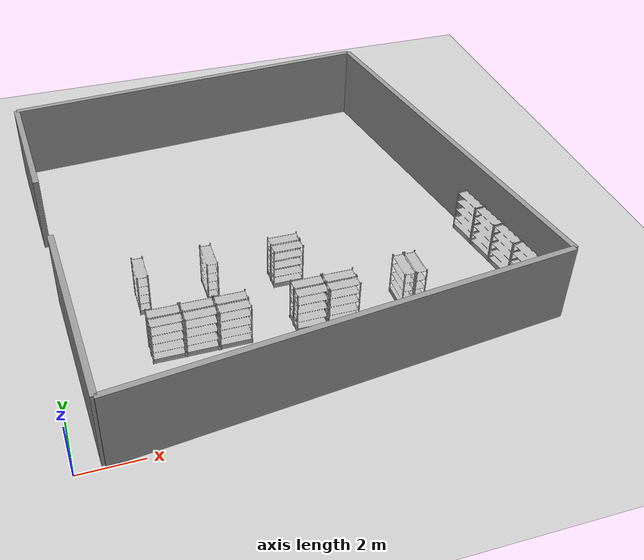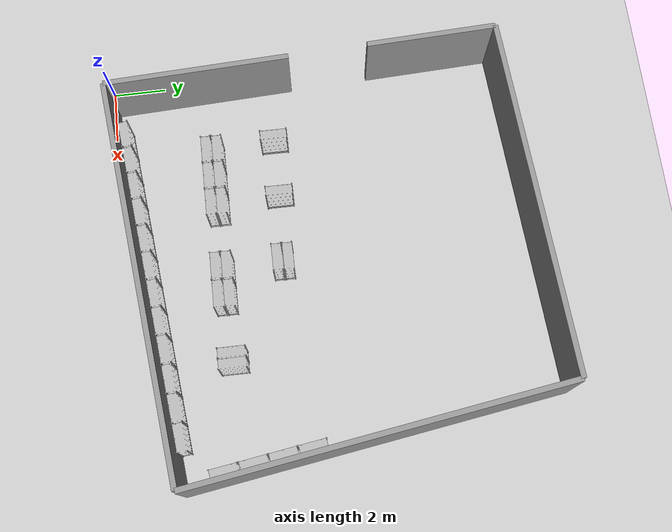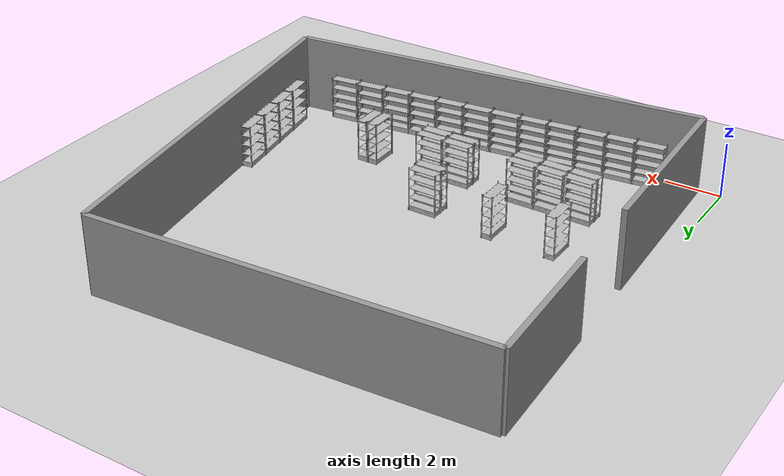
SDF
<sdf version="1.6">
 <world name="default">
  <model name="ground_plane">
   <static>1</static>
   <link name="link">
    <collision name="collision">
     <geometry><plane><normal>0 0 1</normal><size>100 100</size></plane></geometry>
     <surface>
      <contact><collide_bitmask>65535</collide_bitmask></contact>
      <friction><ode><mu>1000</mu><mu2>1000</mu2></ode></friction>
     </surface>
    </collision>
    <visual name="visual">
     <cast_shadows>0</cast_shadows>
     <geometry><plane><normal>0 0 1</normal><size>100 100</size></plane></geometry>
     <material>
      <script><uri>file://media/materials/scripts/gazebo.material</uri><name>Gazebo/Grey</name></script>
     </material>
    </visual>
   </link>
  </model>
  <model name="store_shelf_moduled_0">
   <link name="link">
    <collision name="collision">
     <geometry><mesh><uri>model://store_shelf_moduled/meshes/store_shelf_moduled.dae</uri></mesh></geometry>
    </collision>
    <visual name="visual">
     <geometry><mesh><uri>model://store_shelf_moduled/meshes/store_shelf_moduled.dae</uri></mesh></geometry>
    </visual>
    <inertial>
     <mass>1000</mass>
     <inertia>
      <ixx>840083</ixx>
      <ixy>0</ixy>
      <ixz>0</ixz>
      <iyy>475500</iyy>
      <iyz>0</iyz>
      <izz>1.30208e+06</izz>
     </inertia>
    </inertial>
   </link>
   <static>1</static>
   <pose>1.908724 0.3093622 0 0 0 0.1130012</pose>
  </model>
  <model name="store_shelf_moduled_1">
   <link name="link">
    <collision name="collision">
     <geometry><mesh><uri>model://store_shelf_moduled/meshes/store_shelf_moduled.dae</uri></mesh></geometry>
    </collision>
    <visual name="visual">
     <geometry><mesh><uri>model://store_shelf_moduled/meshes/store_shelf_moduled.dae</uri></mesh></geometry>
    </visual>
    <inertial>
     <mass>1000</mass>
     <inertia>
      <ixx>840083</ixx>
      <ixy>0</ixy>
      <ixz>0</ixz>
      <iyy>475500</iyy>
      <iyz>0</iyz>
      <izz>1.30208e+06</izz>
     </inertia>
    </inertial>
   </link>
   <static>1</static>
   <pose>2.958724 0.4293622 0 0 0 0.1130012</pose>
  </model>
  <model name="store_shelf_moduled_2">
   <link name="link">
    <collision name="collision">
     <geometry><mesh><uri>model://store_shelf_moduled/meshes/store_shelf_moduled.dae</uri></mesh></geometry>
    </collision>
    <visual name="visual">
     <geometry><mesh><uri>model://store_shelf_moduled/meshes/store_shelf_moduled.dae</uri></mesh></geometry>
    </visual>
    <inertial>
     <mass>1000</mass>
     <inertia>
      <ixx>840083</ixx>
      <ixy>0</ixy>
      <ixz>0</ixz>
      <iyy>475500</iyy>
      <iyz>0</iyz>
      <izz>1.30208e+06</izz>
     </inertia>
    </inertial>
   </link>
   <static>1</static>
   <pose>4.008724 0.5493622 0 0 0 0.1130012</pose>
  </model>
  <model name="store_shelf_moduled_3">
   <link name="link">
    <collision name="collision">
     <geometry><mesh><uri>model://store_shelf_moduled/meshes/store_shelf_moduled.dae</uri></mesh></geometry>
    </collision>
    <visual name="visual">
     <geometry><mesh><uri>model://store_shelf_moduled/meshes/store_shelf_moduled.dae</uri></mesh></geometry>
    </visual>
    <inertial>
     <mass>1000</mass>
     <inertia>
      <ixx>840083</ixx>
      <ixy>0</ixy>
      <ixz>0</ixz>
      <iyy>475500</iyy>
      <iyz>0</iyz>
      <izz>1.30208e+06</izz>
     </inertia>
    </inertial>
   </link>
   <static>1</static>
   <pose>5.068724 0.6693622 0 0 0 0.1130012</pose>
  </model>
  <model name="store_shelf_moduled_4">
   <link name="link">
    <collision name="collision">
     <geometry><mesh><uri>model://store_shelf_moduled/meshes/store_shelf_moduled.dae</uri></mesh></geometry>
    </collision>
    <visual name="visual">
     <geometry><mesh><uri>model://store_shelf_moduled/meshes/store_shelf_moduled.dae</uri></mesh></geometry>
    </visual>
    <inertial>
     <mass>1000</mass>
     <inertia>
      <ixx>840083</ixx>
      <ixy>0</ixy>
      <ixz>0</ixz>
      <iyy>475500</iyy>
      <iyz>0</iyz>
      <izz>1.30208e+06</izz>
     </inertia>
    </inertial>
   </link>
   <static>1</static>
   <pose>6.118724 0.7893622 0 0 0 0.1130012</pose>
  </model>
  <model name="store_shelf_moduled_5">
   <link name="link">
    <collision name="collision">
     <geometry><mesh><uri>model://store_shelf_moduled/meshes/store_shelf_moduled.dae</uri></mesh></geometry>
    </collision>
    <visual name="visual">
     <geometry><mesh><uri>model://store_shelf_moduled/meshes/store_shelf_moduled.dae</uri></mesh></geometry>
    </visual>
    <inertial>
     <mass>1000</mass>
     <inertia>
      <ixx>840083</ixx>
      <ixy>0</ixy>
      <ixz>0</ixz>
      <iyy>475500</iyy>
      <iyz>0</iyz>
      <izz>1.30208e+06</izz>
     </inertia>
    </inertial>
   </link>
   <static>1</static>
   <pose>7.168724 0.9093622 0 0 0 0.1130012</pose>
  </model>
  <model name="store_shelf_moduled_6">
   <link name="link">
    <collision name="collision">
     <geometry><mesh><uri>model://store_shelf_moduled/meshes/store_shelf_moduled.dae</uri></mesh></geometry>
    </collision>
    <visual name="visual">
     <geometry><mesh><uri>model://store_shelf_moduled/meshes/store_shelf_moduled.dae</uri></mesh></geometry>
    </visual>
    <inertial>
     <mass>1000</mass>
     <inertia>
      <ixx>840083</ixx>
      <ixy>0</ixy>
      <ixz>0</ixz>
      <iyy>475500</iyy>
      <iyz>0</iyz>
      <izz>1.30208e+06</izz>
     </inertia>
    </inertial>
   </link>
   <static>1</static>
   <pose>8.228724 1.029362 0 0 0 0.1130012</pose>
  </model>
  <model name="store_shelf_moduled_7">
   <link name="link">
    <collision name="collision">
     <geometry><mesh><uri>model://store_shelf_moduled/meshes/store_shelf_moduled.dae</uri></mesh></geometry>
    </collision>
    <visual name="visual">
     <geometry><mesh><uri>model://store_shelf_moduled/meshes/store_shelf_moduled.dae</uri></mesh></geometry>
    </visual>
    <inertial>
     <mass>1000</mass>
     <inertia>
      <ixx>840083</ixx>
      <ixy>0</ixy>
      <ixz>0</ixz>
      <iyy>475500</iyy>
      <iyz>0</iyz>
      <izz>1.30208e+06</izz>
     </inertia>
    </inertial>
   </link>
   <static>1</static>
   <pose>9.278724 1.149362 0 0 0 0.1130012</pose>
  </model>
  <model name="store_shelf_moduled_8">
   <link name="link">
    <collision name="collision">
     <geometry><mesh><uri>model://store_shelf_moduled/meshes/store_shelf_moduled.dae</uri></mesh></geometry>
    </collision>
    <visual name="visual">
     <geometry><mesh><uri>model://store_shelf_moduled/meshes/store_shelf_moduled.dae</uri></mesh></geometry>
    </visual>
    <inertial>
     <mass>1000</mass>
     <inertia>
      <ixx>840083</ixx>
      <ixy>0</ixy>
      <ixz>0</ixz>
      <iyy>475500</iyy>
      <iyz>0</iyz>
      <izz>1.30208e+06</izz>
     </inertia>
    </inertial>
   </link>
   <static>1</static>
   <pose>10.32872 1.269362 0 0 0 0.1130012</pose>
  </model>
  <model name="store_shelf_moduled_9">
   <link name="link">
    <collision name="collision">
     <geometry><mesh><uri>model://store_shelf_moduled/meshes/store_shelf_moduled.dae</uri></mesh></geometry>
    </collision>
    <visual name="visual">
     <geometry><mesh><uri>model://store_shelf_moduled/meshes/store_shelf_moduled.dae</uri></mesh></geometry>
    </visual>
    <inertial>
     <mass>1000</mass>
     <inertia>
      <ixx>840083</ixx>
      <ixy>0</ixy>
      <ixz>0</ixz>
      <iyy>475500</iyy>
      <iyz>0</iyz>
      <izz>1.30208e+06</izz>
     </inertia>
    </inertial>
   </link>
   <static>1</static>
   <pose>11.38872 1.389362 0 0 0 0.1130012</pose>
  </model>
  <model name="store_shelf_moduled_10">
   <link name="link">
    <collision name="collision">
     <geometry><mesh><uri>model://store_shelf_moduled/meshes/store_shelf_moduled.dae</uri></mesh></geometry>
    </collision>
    <visual name="visual">
     <geometry><mesh><uri>model://store_shelf_moduled/meshes/store_shelf_moduled.dae</uri></mesh></geometry>
    </visual>
    <inertial>
     <mass>1000</mass>
     <inertia>
      <ixx>840083</ixx>
      <ixy>0</ixy>
      <ixz>0</ixz>
      <iyy>475500</iyy>
      <iyz>0</iyz>
      <izz>1.30208e+06</izz>
     </inertia>
    </inertial>
   </link>
   <static>1</static>
   <pose>12.43872 1.509362 0 0 0 0.1130012</pose>
  </model>
  <model name="store_shelf_moduled_11">
   <link name="link">
    <collision name="collision">
     <geometry><mesh><uri>model://store_shelf_moduled/meshes/store_shelf_moduled.dae</uri></mesh></geometry>
    </collision>
    <visual name="visual">
     <geometry><mesh><uri>model://store_shelf_moduled/meshes/store_shelf_moduled.dae</uri></mesh></geometry>
    </visual>
    <inertial>
     <mass>1000</mass>
     <inertia>
      <ixx>840083</ixx>
      <ixy>0</ixy>
      <ixz>0</ixz>
      <iyy>475500</iyy>
      <iyz>0</iyz>
      <izz>1.30208e+06</izz>
     </inertia>
    </inertial>
   </link>
   <static>1</static>
   <pose>13.48872 1.629362 0 0 0 0.1130012</pose>
  </model>
  <model name="store_shelf_moduled_12">
   <link name="link">
    <collision name="collision">
     <geometry><mesh><uri>model://store_shelf_moduled/meshes/store_shelf_moduled.dae</uri></mesh></geometry>
    </collision>
    <visual name="visual">
     <geometry><mesh><uri>model://store_shelf_moduled/meshes/store_shelf_moduled.dae</uri></mesh></geometry>
    </visual>
    <inertial>
     <mass>1000</mass>
     <inertia>
      <ixx>840083</ixx>
      <ixy>0</ixy>
      <ixz>0</ixz>
      <iyy>475500</iyy>
      <iyz>0</iyz>
      <izz>1.30208e+06</izz>
     </inertia>
    </inertial>
   </link>
   <static>1</static>
   <pose>15.58118 2.824704 0 0 0 1.724357</pose>
  </model>
  <model name="store_shelf_moduled_13">
   <link name="link">
    <collision name="collision">
     <geometry><mesh><uri>model://store_shelf_moduled/meshes/store_shelf_moduled.dae</uri></mesh></geometry>
    </collision>
    <visual name="visual">
     <geometry><mesh><uri>model://store_shelf_moduled/meshes/store_shelf_moduled.dae</uri></mesh></geometry>
    </visual>
    <inertial>
     <mass>1000</mass>
     <inertia>
      <ixx>840083</ixx>
      <ixy>0</ixy>
      <ixz>0</ixz>
      <iyy>475500</iyy>
      <iyz>0</iyz>
      <izz>1.30208e+06</izz>
     </inertia>
    </inertial>
   </link>
   <static>1</static>
   <pose>15.42118 3.874704 0 0 0 1.724357</pose>
  </model>
  <model name="store_shelf_moduled_14">
   <link name="link">
    <collision name="collision">
     <geometry><mesh><uri>model://store_shelf_moduled/meshes/store_shelf_moduled.dae</uri></mesh></geometry>
    </collision>
    <visual name="visual">
     <geometry><mesh><uri>model://store_shelf_moduled/meshes/store_shelf_moduled.dae</uri></mesh></geometry>
    </visual>
    <inertial>
     <mass>1000</mass>
     <inertia>
      <ixx>840083</ixx>
      <ixy>0</ixy>
      <ixz>0</ixz>
      <iyy>475500</iyy>
      <iyz>0</iyz>
      <izz>1.30208e+06</izz>
     </inertia>
    </inertial>
   </link>
   <static>1</static>
   <pose>15.26118 4.924704 0 0 0 1.724357</pose>
  </model>
  <model name="store_shelf_moduled_15">
   <link name="link">
    <collision name="collision">
     <geometry><mesh><uri>model://store_shelf_moduled/meshes/store_shelf_moduled.dae</uri></mesh></geometry>
    </collision>
    <visual name="visual">
     <geometry><mesh><uri>model://store_shelf_moduled/meshes/store_shelf_moduled.dae</uri></mesh></geometry>
    </visual>
    <inertial>
     <mass>1000</mass>
     <inertia>
      <ixx>840083</ixx>
      <ixy>0</ixy>
      <ixz>0</ixz>
      <iyy>475500</iyy>
      <iyz>0</iyz>
      <izz>1.30208e+06</izz>
     </inertia>
    </inertial>
   </link>
   <static>1</static>
   <pose>15.10118 5.974704 0 0 0 1.724357</pose>
  </model>
  <model name="store_shelf_moduled_33">
   <link name="link">
    <collision name="collision">
     <geometry><mesh><uri>model://store_shelf_moduled/meshes/store_shelf_moduled.dae</uri></mesh></geometry>
    </collision>
    <visual name="visual">
     <geometry><mesh><uri>model://store_shelf_moduled/meshes/store_shelf_moduled.dae</uri></mesh></geometry>
    </visual>
    <inertial>
     <mass>1000</mass>
     <inertia>
      <ixx>840083</ixx>
      <ixy>0</ixy>
      <ixz>0</ixz>
      <iyy>475500</iyy>
      <iyz>0</iyz>
      <izz>1.30208e+06</izz>
     </inertia>
    </inertial>
   </link>
   <static>1</static>
   <pose>11.39 3.38 0 0 0 1.570796</pose>
  </model>
  <model name="store_shelf_moduled_34">
   <link name="link">
    <collision name="collision">
     <geometry><mesh><uri>model://store_shelf_moduled/meshes/store_shelf_moduled.dae</uri></mesh></geometry>
    </collision>
    <visual name="visual">
     <geometry><mesh><uri>model://store_shelf_moduled/meshes/store_shelf_moduled.dae</uri></mesh></geometry>
    </visual>
    <inertial>
     <mass>1000</mass>
     <inertia>
      <ixx>840083</ixx>
      <ixy>0</ixy>
      <ixz>0</ixz>
      <iyy>475500</iyy>
      <iyz>0</iyz>
      <izz>1.30208e+06</izz>
     </inertia>
    </inertial>
   </link>
   <static>1</static>
   <pose>11.39 4.44 0 0 0 -1.570796</pose>
  </model>
  <model name="store_shelf_moduled_35">
   <link name="link">
    <collision name="collision">
     <geometry><mesh><uri>model://store_shelf_moduled/meshes/store_shelf_moduled.dae</uri></mesh></geometry>
    </collision>
    <visual name="visual">
     <geometry><mesh><uri>model://store_shelf_moduled/meshes/store_shelf_moduled.dae</uri></mesh></geometry>
    </visual>
    <inertial>
     <mass>1000</mass>
     <inertia>
      <ixx>840083</ixx>
      <ixy>0</ixy>
      <ixz>0</ixz>
      <iyy>475500</iyy>
      <iyz>0</iyz>
      <izz>1.30208e+06</izz>
     </inertia>
    </inertial>
   </link>
   <static>1</static>
   <pose>3.25 5.64 0 0 0 1.570796</pose>
  </model>
  <model name="store_shelf_moduled_45">
   <link name="link">
    <collision name="collision">
     <geometry><mesh><uri>model://store_shelf_moduled/meshes/store_shelf_moduled.dae</uri></mesh></geometry>
    </collision>
    <visual name="visual">
     <geometry><mesh><uri>model://store_shelf_moduled/meshes/store_shelf_moduled.dae</uri></mesh></geometry>
    </visual>
    <inertial>
     <mass>1000</mass>
     <inertia>
      <ixx>840083</ixx>
      <ixy>0</ixy>
      <ixz>0</ixz>
      <iyy>475500</iyy>
      <iyz>0</iyz>
      <izz>1.30208e+06</izz>
     </inertia>
    </inertial>
   </link>
   <static>1</static>
   <pose>2.83 3.8 0 0 0 0</pose>
  </model>
  <model name="store_shelf_moduled_46">
   <link name="link">
    <collision name="collision">
     <geometry><mesh><uri>model://store_shelf_moduled/meshes/store_shelf_moduled.dae</uri></mesh></geometry>
    </collision>
    <visual name="visual">
     <geometry><mesh><uri>model://store_shelf_moduled/meshes/store_shelf_moduled.dae</uri></mesh></geometry>
    </visual>
    <inertial>
     <mass>1000</mass>
     <inertia>
      <ixx>840083</ixx>
      <ixy>0</ixy>
      <ixz>0</ixz>
      <iyy>475500</iyy>
      <iyz>0</iyz>
      <izz>1.30208e+06</izz>
     </inertia>
    </inertial>
   </link>
   <static>1</static>
   <pose>3.89 3.8 0 0 0 -3.141593</pose>
  </model>
  <model name="store_shelf_moduled_47">
   <link name="link">
    <collision name="collision">
     <geometry><mesh><uri>model://store_shelf_moduled/meshes/store_shelf_moduled.dae</uri></mesh></geometry>
    </collision>
    <visual name="visual">
     <geometry><mesh><uri>model://store_shelf_moduled/meshes/store_shelf_moduled.dae</uri></mesh></geometry>
    </visual>
    <inertial>
     <mass>1000</mass>
     <inertia>
      <ixx>840083</ixx>
      <ixy>0</ixy>
      <ixz>0</ixz>
      <iyy>475500</iyy>
      <iyz>0</iyz>
      <izz>1.30208e+06</izz>
     </inertia>
    </inertial>
   </link>
   <static>1</static>
   <pose>3.89 3.8 0 0 0 0</pose>
  </model>
  <model name="store_shelf_moduled_48">
   <link name="link">
    <collision name="collision">
     <geometry><mesh><uri>model://store_shelf_moduled/meshes/store_shelf_moduled.dae</uri></mesh></geometry>
    </collision>
    <visual name="visual">
     <geometry><mesh><uri>model://store_shelf_moduled/meshes/store_shelf_moduled.dae</uri></mesh></geometry>
    </visual>
    <inertial>
     <mass>1000</mass>
     <inertia>
      <ixx>840083</ixx>
      <ixy>0</ixy>
      <ixz>0</ixz>
      <iyy>475500</iyy>
      <iyz>0</iyz>
      <izz>1.30208e+06</izz>
     </inertia>
    </inertial>
   </link>
   <static>1</static>
   <pose>4.95 3.8 0 0 0 -3.141593</pose>
  </model>
  <model name="store_shelf_moduled_49">
   <link name="link">
    <collision name="collision">
     <geometry><mesh><uri>model://store_shelf_moduled/meshes/store_shelf_moduled.dae</uri></mesh></geometry>
    </collision>
    <visual name="visual">
     <geometry><mesh><uri>model://store_shelf_moduled/meshes/store_shelf_moduled.dae</uri></mesh></geometry>
    </visual>
    <inertial>
     <mass>1000</mass>
     <inertia>
      <ixx>840083</ixx>
      <ixy>0</ixy>
      <ixz>0</ixz>
      <iyy>475500</iyy>
      <iyz>0</iyz>
      <izz>1.30208e+06</izz>
     </inertia>
    </inertial>
   </link>
   <static>1</static>
   <pose>4.95 3.8 0 0 0 0</pose>
  </model>
  <model name="store_shelf_moduled_50">
   <link name="link">
    <collision name="collision">
     <geometry><mesh><uri>model://store_shelf_moduled/meshes/store_shelf_moduled.dae</uri></mesh></geometry>
    </collision>
    <visual name="visual">
     <geometry><mesh><uri>model://store_shelf_moduled/meshes/store_shelf_moduled.dae</uri></mesh></geometry>
    </visual>
    <inertial>
     <mass>1000</mass>
     <inertia>
      <ixx>840083</ixx>
      <ixy>0</ixy>
      <ixz>0</ixz>
      <iyy>475500</iyy>
      <iyz>0</iyz>
      <izz>1.30208e+06</izz>
     </inertia>
    </inertial>
   </link>
   <static>1</static>
   <pose>6.01 3.8 0 0 0 -3.141593</pose>
  </model>
  <model name="store_shelf_moduled_51">
   <link name="link">
    <collision name="collision">
     <geometry><mesh><uri>model://store_shelf_moduled/meshes/store_shelf_moduled.dae</uri></mesh></geometry>
    </collision>
    <visual name="visual">
     <geometry><mesh><uri>model://store_shelf_moduled/meshes/store_shelf_moduled.dae</uri></mesh></geometry>
    </visual>
    <inertial>
     <mass>1000</mass>
     <inertia>
      <ixx>840083</ixx>
      <ixy>0</ixy>
      <ixz>0</ixz>
      <iyy>475500</iyy>
      <iyz>0</iyz>
      <izz>1.30208e+06</izz>
     </inertia>
    </inertial>
   </link>
   <static>1</static>
   <pose>7.43 3.8 0 0 0 0</pose>
  </model>
  <model name="store_shelf_moduled_52">
   <link name="link">
    <collision name="collision">
     <geometry><mesh><uri>model://store_shelf_moduled/meshes/store_shelf_moduled.dae</uri></mesh></geometry>
    </collision>
    <visual name="visual">
     <geometry><mesh><uri>model://store_shelf_moduled/meshes/store_shelf_moduled.dae</uri></mesh></geometry>
    </visual>
    <inertial>
     <mass>1000</mass>
     <inertia>
      <ixx>840083</ixx>
      <ixy>0</ixy>
      <ixz>0</ixz>
      <iyy>475500</iyy>
      <iyz>0</iyz>
      <izz>1.30208e+06</izz>
     </inertia>
    </inertial>
   </link>
   <static>1</static>
   <pose>8.49 3.8 0 0 0 -3.141593</pose>
  </model>
  <model name="store_shelf_moduled_53">
   <link name="link">
    <collision name="collision">
     <geometry><mesh><uri>model://store_shelf_moduled/meshes/store_shelf_moduled.dae</uri></mesh></geometry>
    </collision>
    <visual name="visual">
     <geometry><mesh><uri>model://store_shelf_moduled/meshes/store_shelf_moduled.dae</uri></mesh></geometry>
    </visual>
    <inertial>
     <mass>1000</mass>
     <inertia>
      <ixx>840083</ixx>
      <ixy>0</ixy>
      <ixz>0</ixz>
      <iyy>475500</iyy>
      <iyz>0</iyz>
      <izz>1.30208e+06</izz>
     </inertia>
    </inertial>
   </link>
   <static>1</static>
   <pose>8.49 3.8 0 0 0 0</pose>
  </model>
  <model name="store_shelf_moduled_54">
   <link name="link">
    <collision name="collision">
     <geometry><mesh><uri>model://store_shelf_moduled/meshes/store_shelf_moduled.dae</uri></mesh></geometry>
    </collision>
    <visual name="visual">
     <geometry><mesh><uri>model://store_shelf_moduled/meshes/store_shelf_moduled.dae</uri></mesh></geometry>
    </visual>
    <inertial>
     <mass>1000</mass>
     <inertia>
      <ixx>840083</ixx>
      <ixy>0</ixy>
      <ixz>0</ixz>
      <iyy>475500</iyy>
      <iyz>0</iyz>
      <izz>1.30208e+06</izz>
     </inertia>
    </inertial>
   </link>
   <static>1</static>
   <pose>9.55 3.8 0 0 0 -3.141593</pose>
  </model>
  <model name="store_shelf_moduled_55">
   <link name="link">
    <collision name="collision">
     <geometry><mesh><uri>model://store_shelf_moduled/meshes/store_shelf_moduled.dae</uri></mesh></geometry>
    </collision>
    <visual name="visual">
     <geometry><mesh><uri>model://store_shelf_moduled/meshes/store_shelf_moduled.dae</uri></mesh></geometry>
    </visual>
    <inertial>
     <mass>1000</mass>
     <inertia>
      <ixx>840083</ixx>
      <ixy>0</ixy>
      <ixz>0</ixz>
      <iyy>475500</iyy>
      <iyz>0</iyz>
      <izz>1.30208e+06</izz>
     </inertia>
    </inertial>
   </link>
   <static>1</static>
   <pose>5.51 5.64 0 0 0 1.570796</pose>
  </model>
  <model name="store_shelf_moduled_61">
   <link name="link">
    <collision name="collision">
     <geometry><mesh><uri>model://store_shelf_moduled/meshes/store_shelf_moduled.dae</uri></mesh></geometry>
    </collision>
    <visual name="visual">
     <geometry><mesh><uri>model://store_shelf_moduled/meshes/store_shelf_moduled.dae</uri></mesh></geometry>
    </visual>
    <inertial>
     <mass>1000</mass>
     <inertia>
      <ixx>840083</ixx>
      <ixy>0</ixy>
      <ixz>0</ixz>
      <iyy>475500</iyy>
      <iyz>0</iyz>
      <izz>1.30208e+06</izz>
     </inertia>
    </inertial>
   </link>
   <static>1</static>
   <pose>7.35 6.06 0 0 0 0</pose>
  </model>
  <model name="store_shelf_moduled_62">
   <link name="link">
    <collision name="collision">
     <geometry><mesh><uri>model://store_shelf_moduled/meshes/store_shelf_moduled.dae</uri></mesh></geometry>
    </collision>
    <visual name="visual">
     <geometry><mesh><uri>model://store_shelf_moduled/meshes/store_shelf_moduled.dae</uri></mesh></geometry>
    </visual>
    <inertial>
     <mass>1000</mass>
     <inertia>
      <ixx>840083</ixx>
      <ixy>0</ixy>
      <ixz>0</ixz>
      <iyy>475500</iyy>
      <iyz>0</iyz>
      <izz>1.30208e+06</izz>
     </inertia>
    </inertial>
   </link>
   <static>1</static>
   <pose>8.41 6.06 0 0 0 -3.141593</pose>
  </model>
  <model name="grey_wall0">
   <static>1</static>
   <link name="link">
    <pose>8.36 0.95 1.4 0 0 0.1130012</pose>
    <visual name="visual">
     <cast_shadows>0</cast_shadows>
     <geometry><box><size>15.07615 0.2 2.8</size></box></geometry>
     <material>
      <name>vrc/grey_wall</name>
      <script>
       <uri>model://grey_wall/materials/scripts</uri>
       <uri>model://grey_wall/materials/textures</uri>
       <name>vrc/grey_wall</name>
      </script>
     </material>
    </visual>
    <collision name="collision">
     <geometry><box><size>15.07615 0.2 2.8</size></box></geometry>
     <max_contacts>5</max_contacts>
    </collision>
   </link>
  </model>
  <model name="grey_wall1">
   <static>1</static>
   <link name="link">
    <pose>14.765 8.81 1.4 0 0 1.724357</pose>
    <visual name="visual">
     <cast_shadows>0</cast_shadows>
     <geometry><box><size>14.18694 0.2 2.8</size></box></geometry>
     <material>
      <name>vrc/grey_wall</name>
      <script>
       <uri>model://grey_wall/materials/scripts</uri>
       <uri>model://grey_wall/materials/textures</uri>
       <name>vrc/grey_wall</name>
      </script>
     </material>
    </visual>
    <collision name="collision">
     <geometry><box><size>14.18694 0.2 2.8</size></box></geometry>
     <max_contacts>5</max_contacts>
    </collision>
   </link>
  </model>
  <model name="grey_wall2">
   <static>1</static>
   <link name="link">
    <pose>6.89 15.39 1.4 0 0 -3.078349</pose>
    <visual name="visual">
     <cast_shadows>0</cast_shadows>
     <geometry><box><size>13.6072 0.2 2.8</size></box></geometry>
     <material>
      <name>vrc/grey_wall</name>
      <script>
       <uri>model://grey_wall/materials/scripts</uri>
       <uri>model://grey_wall/materials/textures</uri>
       <name>vrc/grey_wall</name>
      </script>
     </material>
    </visual>
    <collision name="collision">
     <geometry><box><size>13.6072 0.2 2.8</size></box></geometry>
     <max_contacts>5</max_contacts>
    </collision>
   </link>
  </model>
  <model name="grey_wall3">
   <static>1</static>
   <link name="link">
    <pose>0.225 12.505 1.4 0 0 -1.519924</pose>
    <visual name="visual">
     <cast_shadows>0</cast_shadows>
     <geometry><box><size>4.91636 0.2 2.8</size></box></geometry>
     <material>
      <name>vrc/grey_wall</name>
      <script>
       <uri>model://grey_wall/materials/scripts</uri>
       <uri>model://grey_wall/materials/textures</uri>
       <name>vrc/grey_wall</name>
      </script>
     </material>
    </visual>
    <collision name="collision">
     <geometry><box><size>4.91636 0.2 2.8</size></box></geometry>
     <max_contacts>5</max_contacts>
    </collision>
   </link>
  </model>
  <model name="grey_wall4">
   <static>1</static>
   <link name="link">
    <pose>0.69 3.575 1.4 0 0 -1.519044</pose>
    <visual name="visual">
     <cast_shadows>0</cast_shadows>
     <geometry><box><size>6.959318 0.2 2.8</size></box></geometry>
     <material>
      <name>vrc/grey_wall</name>
      <script>
       <uri>model://grey_wall/materials/scripts</uri>
       <uri>model://grey_wall/materials/textures</uri>
       <name>vrc/grey_wall</name>
      </script>
     </material>
    </visual>
    <collision name="collision">
     <geometry><box><size>6.959318 0.2 2.8</size></box></geometry>
     <max_contacts>5</max_contacts>
    </collision>
   </link>
  </model>
 </world>
</sdf>
